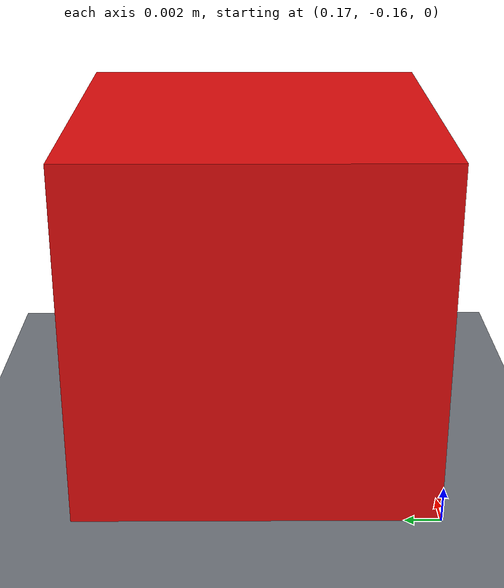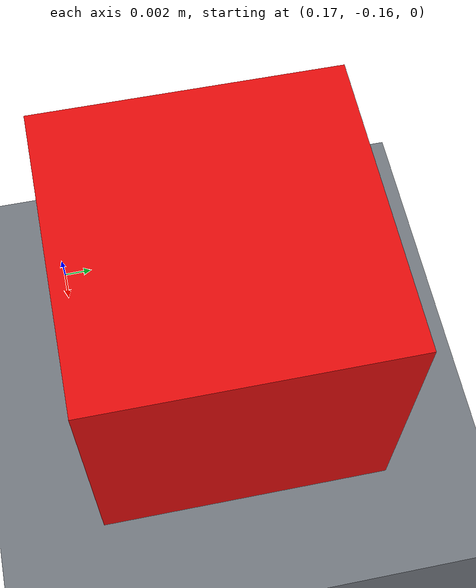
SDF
<?xml version="1.0"?>
<sdf version="1.9">
  <world name="suction_turn">
    <gravity>0 0 -9.81</gravity>
    <plugin filename="gz-sim-physics-system" name="gz::sim::systems::Physics"/>
    <plugin filename="gz-sim-user-commands-system" name="gz::sim::systems::UserCommands"/>
    <plugin filename="gz-sim-scene-broadcaster-system" name="gz::sim::systems::SceneBroadcaster"/>
    <plugin filename="gz-sim-contact-system" name="gz::sim::systems::Contact"/>
    <!-- Ambient fill keeps mesh surfaces readable instead of appearing uniformly black. -->
    <scene>
      <ambient>0.55 0.55 0.55 1</ambient>
      <background>0.75 0.75 0.78 1</background>
    </scene>
    <light name="sun" type="directional">
      <pose>0 0 10 0 0 0</pose><diffuse>1 1 1 1</diffuse><specular>0.35 0.35 0.35 1</specular><direction>-0.5 0.2 -1</direction>
    </light>
    <model name="ground">
      <pose>0 0 -0.01 0 0 0</pose>
      <static>true</static>
      <link name="link">
        <collision name="collision">
          <geometry>
            <box>
              <size>4 4 0.02</size>
            </box>
          </geometry>
        </collision>
        <visual name="visual">
          <geometry>
            <box>
              <size>4 4 0.02</size>
            </box>
          </geometry>
          <material>
            <diffuse>0.45 0.47 0.50 1</diffuse>
          </material>
        </visual>
      </link>
    </model>
    <model name="pick_box">
      <pose>0.18 -0.15 0.01 0 0 0</pose>
      <link name="link">
          <collision name="collision">
            <geometry>
              <box>
                <size>0.02 0.02 0.02</size>
              </box>
            </geometry>
          </collision>
          <visual name="visual">
            <geometry>
              <box>
                <size>0.02 0.02 0.02</size>
              </box>
            </geometry>
            <material>
              <diffuse>0.9 0.05 0.05 1</diffuse>
            </material>
          </visual>
          <inertial>
            <mass>0.02</mass>
            <inertia>
              <ixx>1.33e-6</ixx><iyy>1.33e-6</iyy><izz>1.33e-6</izz>
            </inertia>
          </inertial>
      </link>
    </model>
    <model name="place_table">
    <static>true</static>
    <!-- A zero-thickness box is invalid in Gazebo; use a 2 mm surface whose bottom is at z=0. -->
    <pose>0.08 0.16 0.001 0 0 0</pose>
      <link name="link">
        <collision name="collision">
          <geometry>
            <box>
                <size>0.1 0.1 0.001</size>
            </box>
          </geometry>
        </collision>
        <visual name="visual">
          <geometry>
            <box>
                <size>0.1 0.1 0.001</size>
            </box>
          </geometry>
          <material>
              <diffuse>1 0 0 1</diffuse>
          </material>
        </visual>
      </link>
    </model>
  </world>
</sdf>
